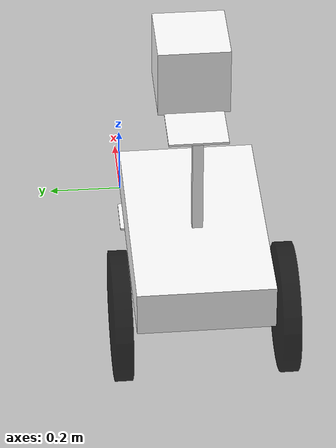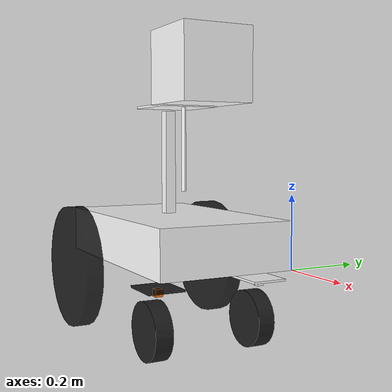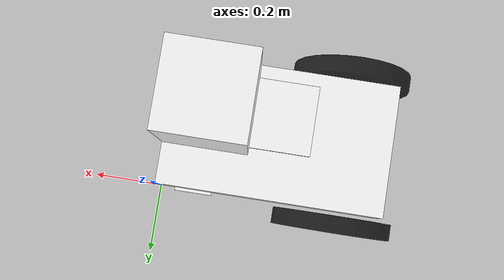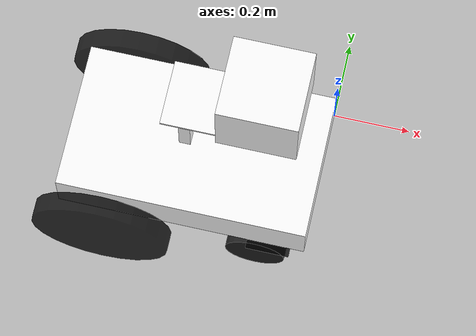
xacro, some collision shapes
<?xml version="1.0"?>

<!--defining a namespace and the robot name are mandatory-->
<robot name="Jimmy" xmlns:xacro="jimmy_description_xacro_namespace">

  <!--====================PART #0 - IMPORT FROM OTHER FILES==================-->
  <!-- Import Rviz colors -->
  <xacro:include filename="$(find jimmy_description)/urdf/materials.xacro" />

  <!-- Import all Gazebo related items from jimmy.gazebo file -->
  <xacro:include filename="$(find jimmy_description)/urdf/jimmy.gazebo" />
  <!--==============END of PART #0 - IMPORT FROM OTHER FILES=================-->

  <!--=========================PART #1 - CONSTANTS===========================-->
  <!-- all the robot constants are defined in this section. Values are meters-->
  <xacro:property name="pi" value="3.1415926535897931" />

  <!--base link values-->
  <xacro:property name="base_link_length_width_height" value="0.650 0.381 0.132" />
  <xacro:property name="base_link_length" value="0.650" />
  <xacro:property name="base_link_width" value="0.381" />
  <xacro:property name="base_link_height" value="0.132" />
  <xacro:property name="base_link_mass" value="20"/> <!--25 kg-->

  <!--left and right drive wheel values (both are same size)-->
  <xacro:property name="drive_wheel_length" value="0.049" />
  <xacro:property name="drive_wheel_radius" value="0.181" />
  <xacro:property name="drive_wheel_mass" value="2"/> <!--2 kg-->

  <!--left and right castor mount plate size (both are same size)-->
  <xacro:property name="castor_mount_link_length_width_height" value="0.1145 0.10 0.0057" />
  <xacro:property name="castor_mount_link_length" value="0.1145" />
  <xacro:property name="castor_mount_link_width" value="0.10" />
  <xacro:property name="castor_mount_link_height" value="0.0057" />
  <xacro:property name="castor_mount_link_mass" value="0.25"/> <!--0.25 kg-->

  <!--dummy link to give castors rotation about the Z axis-->
  <xacro:property name="castor_mount_dummy_link_length" value="0.02" />
  <xacro:property name="castor_mount_dummy_link_width" value="0.02" />
  <xacro:property name="castor_mount_dummy_link_height" value="0.02" />
  <xacro:property name="castor_mount_dummy_link_mass" value="1.5"/> <!--0.25 kg-->

  <!-- left and right castor wheels (both are same size) -->
  <xacro:property name="castor_wheel_length" value="0.049" />
  <xacro:property name="castor_wheel_radius" value="0.07925" />
  <xacro:property name="castor_wheel_mass" value="2"/> <!--2 kg-->

  <!--dimensions of shaft which is tuned by A.M.P. servo motor               -->
  <xacro:property name="lms_rotating_shaft_length" value="0.235" />
  <xacro:property name="lms_rotating_shaft_radius" value="0.006" />
  <xacro:property name="lms_rotating_shaft_mass" value="1.5"/> <!--1.5 kg-->

  <!--dimensions of plate on which the LMS sits                              -->
  <xacro:property name="lms_plate_link_length_width_height" value="0.18415 0.1651 0.00635" />
  <xacro:property name="lms_plate_link_length" value="0.18415" />
  <xacro:property name="lms_plate_link_width" value="0.1651" />
  <xacro:property name="lms_plate_link_height" value="0.00635" />
  <xacro:property name="lms_plate_link_mass" value="0.5"/> <!--0.5 kg-->

  <!--Box representing a collision space for the actual LMS. according to    -->
  <!--docs, using meshes for collisions is very computationally intensive, so-->
  <!--it is much better to define collision space as a regular box.          -->
  <xacro:property name="lms_collision_space_length_width_height" value="0.20 0.20 0.20" />

  <!--The dimensions of the aluminum extrusion holding the entire lms system -->
  <xacro:property name="lms_structural_extrusion_link_length_width_height" value="0.03 0.03 0.425" />
  <xacro:property name="lms_structural_extrusion_link_length" value="0.03" />
  <xacro:property name="lms_structural_extrusion_link_width" value="0.03" />
  <xacro:property name="lms_structural_extrusion_link_height" value="0.425" />
  <xacro:property name="lms_structural_extrusion_link_mass" value="3"/> <!--3 kg-->

  <!--Friction for joints-->
  <xacro:property name="friction_val" value="0.15"/>

  <!--======================END ofPART #1 - CONSTANTS========================-->

  <!--============================PART #2 - MACROS===========================-->
  <!-- This section contains macros for the two types of links I use, namely -->
  <!-- box and cylinder. I do not use any spere shapes.                      -->

  <!--&&&&&&&&&&&&&&&&&&&&&&&&&&&&&&&& BOX &&&&&&&&&&&&&&&&&&&&&&&&&&&&&&&&&&-->
  <!-- This macro defines a box link. This makes creating a box link much    -->
  <!-- easier and cleaner. The parameters are as follows:                    -->
  <!-- link_name - the string that represents the link                       -->
  <!-- length_width_height - this is the length, width and height in meters  -->
  <!-- *origin - this is the rpy - the roll, pitch and yaw. This allows us   -->
  <!--           to rotate the item about all 3 axis (in radians). It is     -->
  <!--           also the xyz, which allows us to move the item along all 3  -->
  <!--           axis from a reference point. We type this line directly in  -->
  <!--           rather then defining 6 seperate constants per cylinder!     -->
  <!-- material - this is the rviz color of the item                         -->
  <!-- mass - this is the kg value of the item (estimated) to make gazebo    -->
  <!--        happy                                                          -->
  <xacro:macro name="box_link" params="link_name length width height material mass *origin">
    <link name="${link_name}_link">
      <collision>
        <geometry>
          <box size="${length} ${width} ${height}"/>
        </geometry>
        <xacro:insert_block name="origin" />
      </collision>

      <visual>
        <geometry>
          <!--box dimensions is Meters. L X W X H where the L X H is a ractange,
              and the H extrudes it upwards -->
          <box size="${length} ${width} ${height}"/>
        </geometry>
        <xacro:insert_block name="origin" />
        <material name="${material}"/>
      </visual>

      <inertial>
        <xacro:insert_block name="origin" />
        <!--all blocks now need a 'mass' argument-->
        <mass value="${mass}"/>
        <!--This is the 3x3 inertial matrix. See: https://wiki.ros.org/urdf/XML/link -->
        <!--where x=length; y=width; z=height. these lines of code came from
        Emiliano Borghi's project-->
        <inertia
          ixx="${mass*(width*width+height*height)/12}"
    	  ixy = "0"
    	  ixz = "0"
    	  iyy="${mass*(length*length+height*height)/12}"
    	  iyz = "0"
    	  izz="${mass*(length*length+height*height)/12}"/>
      </inertial>

    </link>
  </xacro:macro>

  <!--&&&&&&&&&&&&&&&&&&&&&&&&&&&&&&& CYLINDER &&&&&&&&&&&&&&&&&&&&&&&&&&&&&&-->
  <!-- This macro defines a cylinder link. This makes creating a box link    -->
  <!-- much easier and cleaner. The parameters are as follows:               -->
  <!-- link_name - the string that represents the link                       -->
  <!-- length - this is the length of the cylinder in meters                 -->
  <!-- radius - the radius of the cylinder in meters                         -->
  <!-- *origin - this is the rpy - the roll, pitch and yaw. This allows us   -->
  <!--           to rotate the item about all 3 axis (in radians). It is     -->
  <!--           also the xyz, which allows us to move the item along all 3  -->
  <!--           axis from a reference point. We type this line directly in  -->
  <!--           rather then defining 6 seperate constants per cylinder!     -->
  <!-- material - this is the rviz color of the item                         -->
  <!-- mass - this is the kg value of the item (estimated) to make gazebo    -->
  <!--        happy                                                          -->
  <!-- NOTE: the astrix means that you have to physically type the line as an-->
  <!--       argument when using (as well as insering a xacro:insert_block...-->
  <!--       See: https://wiki.ros.org/urdf/Tutorials/Using%20Xacro%20to%20Clean%20Up%20a%20URDF%20File#Parameterized_Macro -->
  <xacro:macro name="cylinder_link" params="link_name length radius material mass *origin">
    <link name="${link_name}_link">
      <collision>
        <geometry>
          <cylinder length="${length}" radius="${radius}"/>
        </geometry>
        <xacro:insert_block name="origin" />
      </collision>

      <visual>
        <geometry>
          <cylinder length="${length}" radius="${radius}"/>
        </geometry>
        <xacro:insert_block name="origin" />
        <material name="${material}"/>
      </visual>

      <!--TODO-->
      <inertial>
        <xacro:insert_block name="origin" />
        <!--all blocks now need a 'mass' argument-->
        <mass value="${mass}"/>

        <!--This is the 3x3 inertial matrix. See: https://wiki.ros.org/urdf/XML/link -->
        <inertia
          ixx="${mass*(3*radius*radius+length*length)/12}"
    	  ixy = "0"
    	  ixz = "0"
    	  iyy="${mass*(3*radius*radius+length*length)/12}"
    	  iyz = "0"
    	  izz="${mass*radius*radius/2}"
        />
      </inertial>

    </link>
  </xacro:macro>

  <!--&&&&&&&&&&&&&&&&&&&&&&&& CONTINUOUS JOINT &&&&&&&&&&&&&&&&&&&&&&&&&&&&&-->
  <!-- This macro defines a continuous joint. This makes creating a          -->
  <!-- continuous joint much easier and cleaner. The parameters are as       -->
  <!-- follows:                                                              -->
  <!-- name - the string that represents the joint                           -->
  <!-- rpy - the roll, pitch and yaw. This is always 0 0 0                   -->
  <!-- xyz - this defines the axis around which the continuous joint will    -->
  <!--       roll around.                                                    -->
  <!-- parent - this is the parent link to which the child will connect      -->
  <!-- child - this is the child link                                        -->
  <!-- *origin - this is the rpy and xyz point at which the child connects to-->
  <!--           the parent. this is entered as a block. everything is in    -->
  <!--           meters and radians                                          -->
  <!-- NOTE: the astrix means that you have to physically type the line as an-->
  <!--       argument when using (as well as insering a xacro:insert_block...-->
  <!--       See: https://wiki.ros.org/urdf/Tutorials/Using%20Xacro%20to%20Clean%20Up%20a%20URDF%20File#Parameterized_Macro -->
  <xacro:macro name="continuous_joint" params="name rpy xyz parent child friction *origin">
    <joint name="${name}_joint" type="continuous">
      <axis rpy="${rpy}" xyz="${xyz}"/>
      <parent link="${parent}_link"/>
      <child link="${child}_link"/>
      <!-- this is the point at which the two parts attach to one another    -->
      <xacro:insert_block name="origin" />
      <!--This introduces friction so that continious joints don't spin indefinitly
      damping is only used in Gazebo4 and earlier.... -->
      <dynamics damping="0.0" friction="${friction}"/>
    </joint>
  </xacro:macro>

  <!--&&&&&&&&&&&&&&&&&&&&&&&&&&&&& FIXED JOINT &&&&&&&&&&&&&&&&&&&&&&&&&&&&&-->
  <!-- This macro defines a continuous joint. This makes creating a          -->
  <!-- continuous joint much easier and cleaner. The parameters are as       -->
  <!-- follows:                                                              -->
  <!-- name - the string that represents the joint                           -->
  <!-- parent - this is the parent link to which the child will connect      -->
  <!-- child - this is the child link                                        -->
  <!-- *origin - this is the rpy and xyz point at which the child connects to-->
  <!--           the parent. this is entered as a block. everything is in    -->
  <!--           meters and radians                                          -->
  <!-- NOTE: the astrix means that you have to physically type the line as an-->
  <!--       argument when using (as well as insering a xacro:insert_block...-->
  <!--       See: https://wiki.ros.org/urdf/Tutorials/Using%20Xacro%20to%20Clean%20Up%20a%20URDF%20File#Parameterized_Macro -->
  <xacro:macro name="fixed_joint" params="name parent child *origin">
    <joint name="${name}_joint" type="fixed">
      <parent link="${parent}_link"/>
      <child link="${child}_link"/>
      <!-- this is the point at which the two parts attach to one another    -->
      <xacro:insert_block name="origin" />
    </joint>
  </xacro:macro>
  <!--======================END ofPART #2 - MACROS===========================-->

  <!--===================PART #3 - LINK & JOINT DEFINITIONS==================-->

  <!-- all the robot constants are defined in this section. Values are meters-->
  <!--base_link is the parent link onto which all other links join to -->
  <xacro:box_link link_name="base" length="${base_link_length}"
                                   width="${base_link_width}"
                                   height="${base_link_height}" material="white" mass="${base_link_mass}">
    <!--origin rpy="0 0 0" xyz="-0.325 -0.1905 0.066"/-->
    <origin rpy="0 0 0" xyz="-0.325 -0.1905 0.066"/>
  </xacro:box_link>

  <!--left_drive_wheel_link is a well named link :-) -->
  <xacro:cylinder_link link_name="left_drive_wheel" length="${drive_wheel_length}" radius="${drive_wheel_radius}" material="black" mass="${drive_wheel_mass}">
    <origin xyz="0 0 0" rpy="${pi/2} 0 0"/>
  </xacro:cylinder_link>

  <xacro:continuous_joint name="base_to_left_drive_wheel" rpy="0 0 0" xyz="0 1 0" parent="base" child="left_drive_wheel"
                          friction="${friction_val}">
    <origin xyz="-0.52835 0.037 -0.035"/>
  </xacro:continuous_joint>

  <!--right_drive_wheel_link is a well named link :-) -->
  <xacro:cylinder_link link_name="right_drive_wheel" length="${drive_wheel_length}" radius="${drive_wheel_radius}" material="black" mass="${drive_wheel_mass}">
    <origin xyz="0 0 0" rpy="${pi/2} 0 0"/>
  </xacro:cylinder_link>

  <xacro:continuous_joint name="base_to_right_drive_wheel" rpy="0 0 0" xyz="0 1 0" parent="base" child="right_drive_wheel"
                          friction="${friction_val}">
    <origin xyz="-0.52835 -0.421 -0.035"/>
  </xacro:continuous_joint>

  <!--+++++++++++++++++++++++++++++++++++LEFT CASTOR+++++++++++++++++++++++++++++++++++++++++++++++++++-->
  <!--left_caster_mount -->
  <xacro:box_link link_name="left_castor_mount" length="${castor_mount_link_length}"
                                                width="${castor_mount_link_width}"
                                                height="${castor_mount_link_height}" material="white"
                                                mass="${castor_mount_link_mass}">
    <origin xyz="0 0 0" rpy="0 0 0" />
  </xacro:box_link>

   <!--joint-->
  <xacro:fixed_joint name="base_to_left_castor_mount" parent="base" child="left_castor_mount">
    <origin xyz="-0.09445 -0.041 -0.03265"/>
  </xacro:fixed_joint>

  <!--left_caster_dummy to give the castor wheel rotation about the Z axis -->
  <xacro:box_link link_name="left_castor_dummy" length="${castor_mount_dummy_link_length}"
                                                width="${castor_mount_dummy_link_width}"
                                                height="${castor_mount_dummy_link_height}" material="white"
                                                mass="${castor_mount_dummy_link_mass}">
    <origin xyz="0 0 0" rpy="0 0 0" />
  </xacro:box_link>

  <!--joint between left castor mount and dummy link to allow rotation of castor wheel about z axis-->
  <xacro:continuous_joint name="left_castor_mount_to_left_castor_dummy" rpy="0 0 0" xyz="0 0 1"
                          parent="left_castor_mount" child="left_castor_dummy" friction="${friction_val}">
    <origin xyz="0.0 0.0 -0.01"/>
  </xacro:continuous_joint>

  <!--left_castor_wheel_link is a well named link :-) -->
  <xacro:cylinder_link link_name="left_castor_wheel" length="${castor_wheel_length}" radius="${castor_wheel_radius}" material="Black" mass="${castor_wheel_mass}">
    <origin xyz="0 0 0" rpy="${pi/2} 0 0"/>
  </xacro:cylinder_link>

  <xacro:continuous_joint name="left_castor_dummy_to_left_castor_wheel" rpy="0 0 0" xyz="0 1 0"
                          parent="left_castor_dummy" child="left_castor_wheel" friction="${friction_val}">
    <origin xyz="-0.037 0.0 -0.10785"/>
  </xacro:continuous_joint>

  <!--+++++++++++++++++++++++++++++++++++RIGHT CASTOR+++++++++++++++++++++++++++++++++++++++++++++++++++-->

  <!--right_caster_plate_link is a well named link :-) -->
  <xacro:box_link link_name="right_castor_mount" length="${castor_mount_link_length}"
                                                 width="${castor_mount_link_width}"
                                                 height="${castor_mount_link_height}" material="black"
                                                 mass="${castor_mount_link_mass}">
    <origin xyz="0 0 0" rpy="0 0 0" />
  </xacro:box_link>

  <xacro:fixed_joint name="base_to_right_castor_mount" parent="base" child="right_castor_mount">
    <origin xyz="-0.09445 -0.344 -0.03265"/>
  </xacro:fixed_joint>

  <!--right_caster_dummy to give the castor wheel rotation about the Z axis -->
  <xacro:box_link link_name="right_castor_dummy" length="${castor_mount_dummy_link_length}"
                                                 width="${castor_mount_dummy_link_width}"
                                                 height="${castor_mount_dummy_link_height}" material="orange"
                                                 mass="${castor_mount_dummy_link_mass}">
    <origin xyz="0 0 0" rpy="0 0 0" />
  </xacro:box_link>

  <!--joint between right castor mount and dummy link to allow rotation of castor wheel about z axis-->
  <xacro:continuous_joint name="right_castor_mount_to_right_castor_dummy" rpy="0 0 0" xyz="0 0 1"
                          parent="right_castor_mount" child="right_castor_dummy" friction="${friction_val}">
    <origin xyz="0.0 0.0  -0.01"/>
  </xacro:continuous_joint>

  <!--right_castor_wheel_link is a well named link :-) -->
  <xacro:cylinder_link link_name="right_castor_wheel" length="${castor_wheel_length}" radius="${castor_wheel_radius}"
                       material="Black" mass="${castor_wheel_mass}">
    <origin xyz="0 0 0" rpy="${pi/2} 0 0"/>
  </xacro:cylinder_link>

  <xacro:continuous_joint name="right_castor_dummy_to_right_castor_wheel" rpy="0 0 0" xyz="0 1 0"
                          parent="right_castor_dummy" child="right_castor_wheel" friction="${friction_val}">
    <origin xyz="-0.037 0 -0.10785"/>
  </xacro:continuous_joint>

  <!--lms_structrual_extrusion is the aluminum extrusion that is supporting   -->
  <!-- the entire LMS structure. I put it here for aestetics.                -->
  <xacro:box_link link_name="lms_structural_extrusion" length="${lms_structural_extrusion_link_length}"
                                                      width="${lms_structural_extrusion_link_width}"
                                                      height="${lms_structural_extrusion_link_height}" material="white" mass="${lms_structural_extrusion_link_mass}">
    <origin xyz="0 0 0" rpy="0 0 0" />
  </xacro:box_link>

  <xacro:fixed_joint name="base_link_to_lms_structural_extrusion" parent="base" child="lms_structural_extrusion">
    <origin xyz="-0.3531 -0.1905 0.2173"/>
  </xacro:fixed_joint>

  <!--This is the rotating shaft on which the LMS sits, and which the servo  -->
  <!--motor rotates.                                                         -->
  <xacro:cylinder_link link_name="lms_rotating_shaft" length="${lms_rotating_shaft_length}" radius="${lms_rotating_shaft_radius}" material="white" mass="${lms_rotating_shaft_mass}">
    <origin xyz="0 0 0" rpy="0 0 0"/>
  </xacro:cylinder_link>

  <!-- This joint attaches the rotating_lms_shaft to the base link -->
  <xacro:continuous_joint name="base_link_to_rotating_lms_shaft" rpy="0 0 0" xyz="0 0 1"
                          parent="base" child="lms_rotating_shaft" friction="${friction_val}">
    <origin xyz="-0.2531 -0.1905 0.3195"/>
  </xacro:continuous_joint>

  <!--lms_plate is the plate onto which I mounted the lms :-) -->
  <xacro:box_link link_name="lms_plate" length="${lms_plate_link_length}"
                                        width="${lms_plate_link_width}"
                                        height="${lms_plate_link_height}" material="white" mass="${lms_plate_link_mass}">
    <origin xyz="0 0 0" rpy="0 0 0" />
  </xacro:box_link>

  <xacro:fixed_joint name="lms_rotating_shaft_to_lms_plate" parent="lms_rotating_shaft" child="lms_plate">
    <origin xyz="-0.04905 0 0.120675"/>
  </xacro:fixed_joint>

  <!--========SPECIAL CASES for LINK & JOINT DEFINITIONS=====================-->
  <!-- This area contains one offs, such as a link with meshes, a links that -->
  <!-- anchor the laser (point in space from which all /scan topic data is   -->
  <!-- refrenced), and I think thats it. But basically a bunch of non xacro  -->
  <!-- code (even though where I can, I still use xacro. Ex: joints).        -->

  <joint name="lms_plate_to_lms_mesh" type="fixed">
	<!--axis tag is not used according to: https://wiki.ros.org/urdf/XML/joint -->
    <!--axis xyz="0 0 0" /-->
	<!--relationship of child link to parent link. This is doing the laser rendering
        in rviz, not the mesh.-->
    <origin xyz=".15 0 .1" rpy="-1.57 0.0 0"/>
    <parent link="lms_plate_link"/>
    <child link="laser"/>
  </joint>

  <!-- this link is the actual LMS, and is rendered by importing a mesh file.-->
  <!-- This link definition is not using any macros as there is only one type-->
  <!-- of this link. No need to automate it.                                 -->
  <link name="laser">
    <collision>
      <origin rpy="0 0 0" xyz="0 0 0"/>
	  <geometry>
        <box size="${lms_collision_space_length_width_height}"/>
      </geometry>

    </collision>

    <visual>
      <geometry>
        <mesh filename="package://jimmy_description/meshes/lms-200-30106.dae" scale="0.095 0.095 0.095"/>
      </geometry>
	  <!--This is responsible for rendering the mesh on the lms plate-->
      <origin rpy="1.57 0.0 0.0" xyz="-0.02 0.025 0"/>
      <material name="white"/>
    </visual>

    <inertial>
      <origin rpy="0 0 0" xyz="0 0 0"/>
      <!--mass is the kg value of the link-->
      <mass value="1"/>
      <!--3x3 inertia matrix. See: https://wiki.ros.org/urdf/XML/link
      the values are copy pasted from: http://gazebosim.org/tutorials/?tut=ros_urdf-->
      <inertia
        ixx="1.0" ixy="0.0" ixz="0.0"
        iyy="1.0" iyz="0.0"
        izz="1.0"/>
    </inertial>
  </link>

  <!--===============END OF PART #3 - LINK & JOINT DEFINITIONS===============-->
</robot>

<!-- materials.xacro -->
<robot>

  <!-- Definition of the color black in RVIZ -->
  <material name="black">
    <!--The float values are the result of (x/255)-->
    <color rgba="0.0 0.0 0.0 0.8"/>
  </material>

  <!-- Definition of the color white in RVIZ -->
  <material name="white">
    <color rgba="1.0 1.0 1.0 1.0"/>
  </material>

  <!--These definitions came from "gazebo_ros_demos_kinetic_devel" package-->
  <material name="blue">
    <color rgba="0.0 0.0 0.8 1.0"/>
  </material>

  <material name="green">
    <color rgba="0.0 0.8 0.0 1.0"/>
  </material>

  <material name="grey">
    <color rgba="0.2 0.2 0.2 1.0"/>
  </material>

  <material name="orange">
    <color rgba="${255/255} ${108/255} ${10/255} 1.0"/>
  </material>

  <material name="brown">
    <color rgba="${222/255} ${207/255} ${195/255} 1.0"/>
  </material>

  <material name="red">
    <color rgba="0.8 0.0 0.0 1.0"/>
  </material>

</robot>
